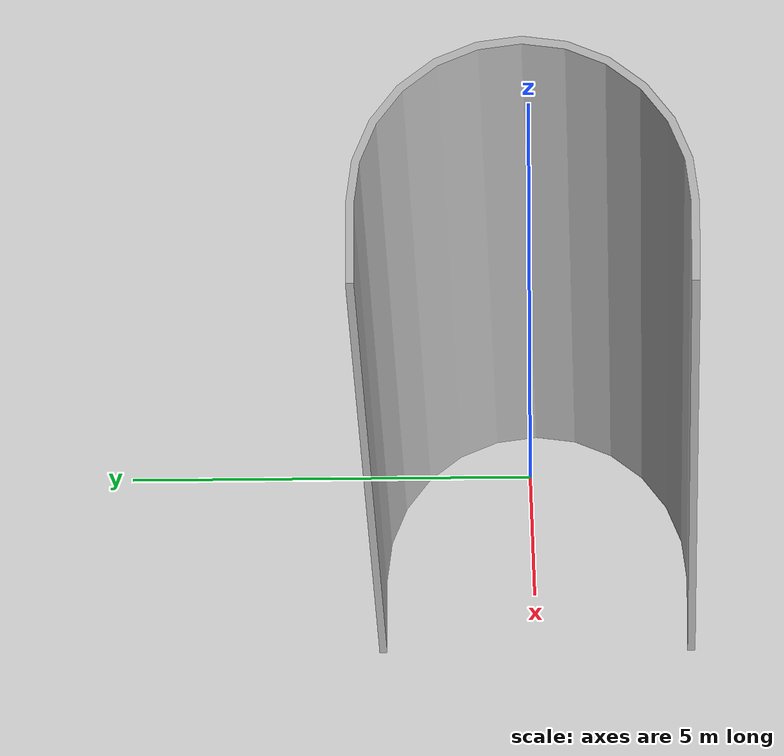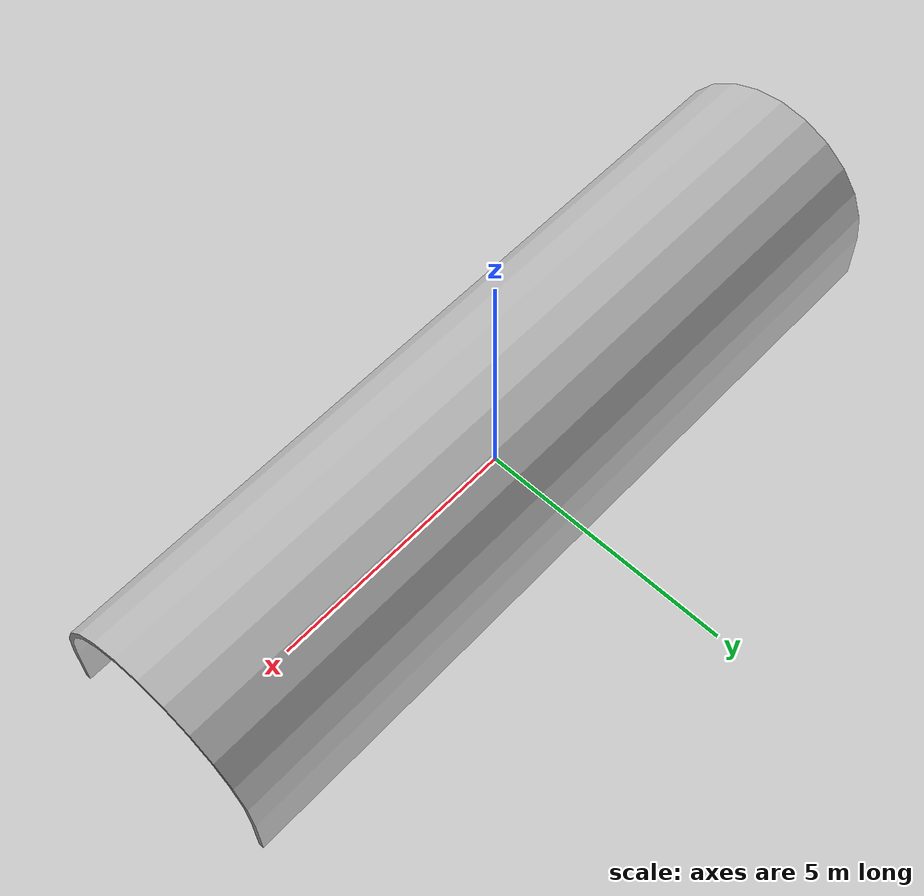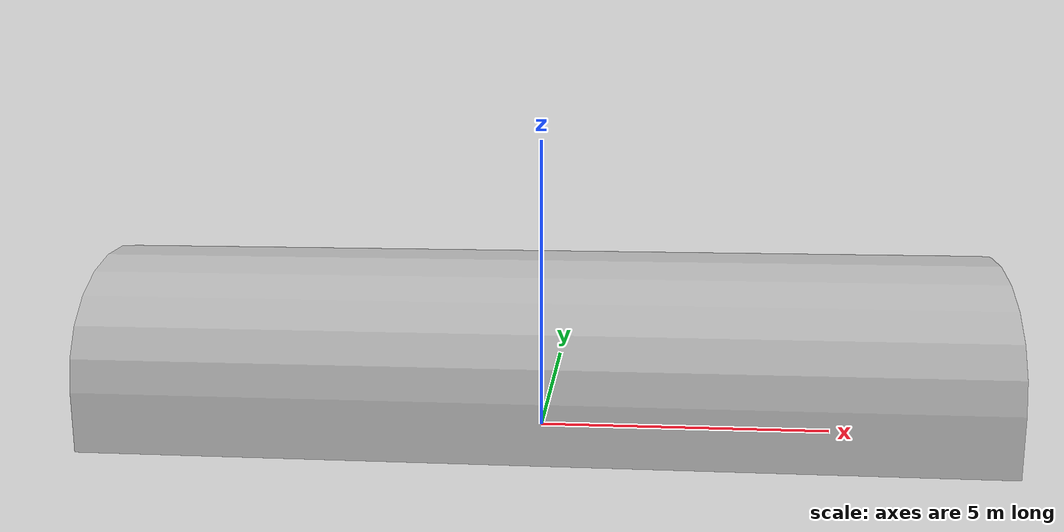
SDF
<sdf version='1.6'>
  <model name='Tunnel_Gazebo'>
    <link name='Tunnel_Gazebo'>
      <pose frame=''>0 0 0 0 -0 0</pose>
      <inertial>
        <pose frame=''>0 0 1.8775 0 -0 0</pose>
        <mass>100020</mass>
        <inertia>
          <ixx>351410</ixx>
          <ixy>-1.0876e-12</ixy>
          <ixz>5.9917e-10</ixz>
          <iyy>1.9667e+06</iyy>
          <iyz>-5.08445e-12</iyz>
          <izz>2.1354e+06</izz>
        </inertia>
      </inertial>
      <collision name='Tunnel_Gazebo_collision'>
        <pose frame=''>0 0 0 1.5708 -0 0</pose>
        <geometry>
          <mesh>
            <scale>1 1 1</scale>
            <uri>model://tunnel_gazebo/meshes/Tunnel_Gazebo.dae</uri>
          </mesh>
        </geometry>
      </collision>
      <visual name='Tunnel_Gazebo_visual'>
        <pose frame=''>0 0 0 1.5708 -0 0</pose>
        <geometry>
          <mesh>
            <scale>1 1 1</scale>
            <uri>model://tunnel_gazebo/meshes/Tunnel_Gazebo.dae</uri>
          </mesh>
        </geometry>
      </visual>
    </link>
  </model>
</sdf>
